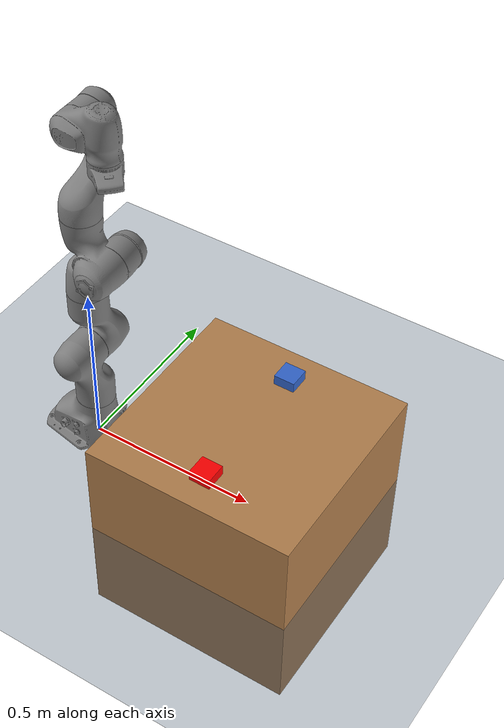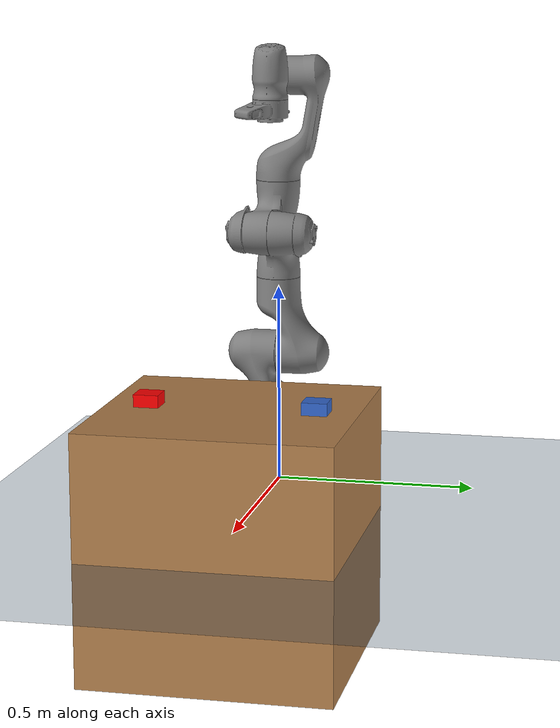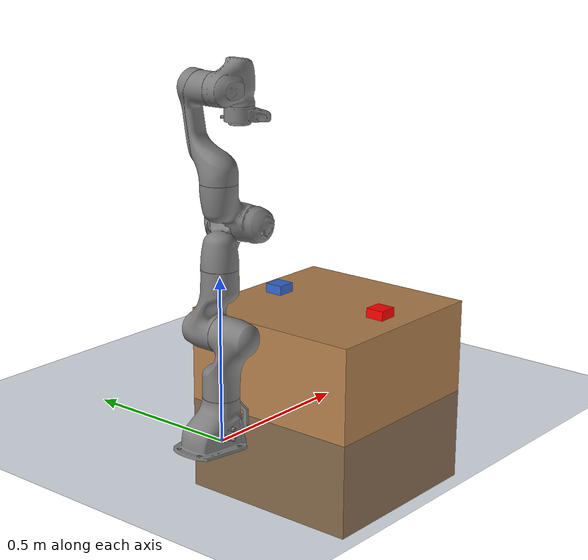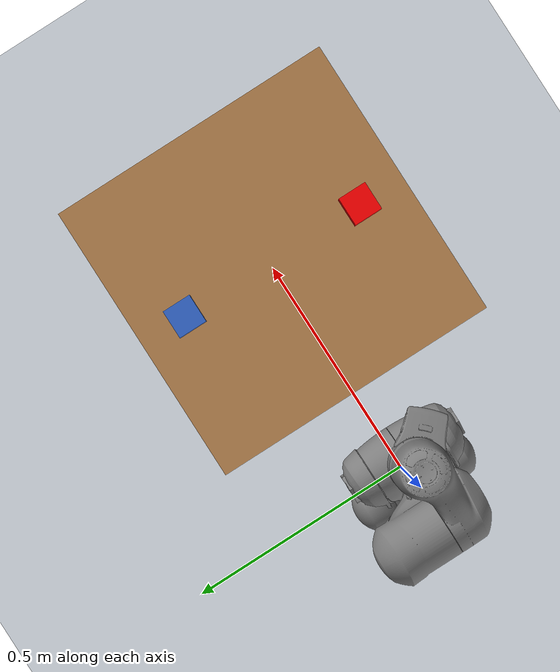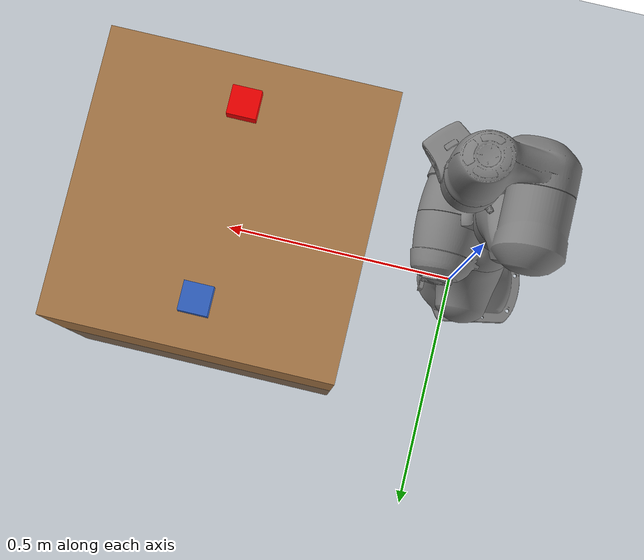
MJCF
<mujoco model="panda scene">
  <include file="panda.xml"/>

  <statistic center="0.3 0 0.4" extent="1"/>

  <visual>
    <headlight diffuse="0.6 0.6 0.6" ambient="0.3 0.3 0.3" specular="0 0 0"/>
    <rgba haze="0.15 0.25 0.35 1"/>
    <global azimuth="120" elevation="-20"/>
  </visual>

  <asset>
    <texture type="skybox" builtin="gradient" rgb1="0.3 0.5 0.7" rgb2="0 0 0" width="512" height="3072"/>
    <texture type="2d" name="groundplane" builtin="checker" mark="edge"
             rgb1="0.2 0.3 0.4" rgb2="0.1 0.2 0.3"
             markrgb="0.8 0.8 0.8" width="300" height="300"/>
    <material name="groundplane" texture="groundplane"
              texuniform="true" texrepeat="5 5" reflectance="0.2"/>
  </asset>

  <worldbody>
    <!-- LIGHT -->
    <light pos="0 0 1.5" dir="0 0 -1" directional="true"/>

    <!-- FLOOR -->
    <geom name="floor" size="0 0 0.05" type="plane" material="groundplane"/>

      <!-- STATIC CAMERA -->
    <camera name="static_cam"
      pos="-0.2 -0.45 1.5"
      euler="0.4 -0.5236 -0.8727"
      fovy="45"/>

    <!-- STATIC DESK -->
    <body name="desk" pos="0.5 0 0">
        <geom name="desk_geom"
              type="box"
              size="0.3 0.3 0.3"
              rgba="0.7 0.5 0.3 1"
              contype="1"
              conaffinity="1"/>
    </body>

    <!-- MOVABLE BLOCK -->
  <body name="block1" pos="0.5 0.2 0.3">
      <freejoint/>
      <geom name="block_geom1"
            type="box"
            size="0.03 0.03 0.03"
            rgba="0.2 0.4 0.8 1"
            density="500"/>
  </body>

  <body name="block2" pos="0.5 -0.2 0.3">
      <freejoint/>
      <geom name="block_geom2"
            type="box"
            size="0.03 0.03 0.03"
            rgba="1 0 0 1"
            density="500"/>
  </body>

  </worldbody>
</mujoco>

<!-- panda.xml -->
<mujoco model="panda">
  <compiler angle="radian"/>

  <asset>
    <mesh name="link0" file="models/panda_description/meshes/visual/link0.stl"/>
    <mesh name="link1" file="models/panda_description/meshes/visual/link1.stl"/>
    <mesh name="link2" file="models/panda_description/meshes/visual/link2.stl"/>
    <mesh name="link3" file="models/panda_description/meshes/visual/link3.stl"/>
    <mesh name="link4" file="models/panda_description/meshes/visual/link4.stl"/>
    <mesh name="link5" file="models/panda_description/meshes/visual/link5.stl"/>
    <mesh name="link6" file="models/panda_description/meshes/visual/link6.stl"/>
    <mesh name="link7" file="models/panda_description/meshes/visual/link7.stl"/>
  </asset>

  <worldbody>
    <geom type="mesh" mesh="link0"/>
    <body name="panda_link1" pos="0 0 0.333">
      <inertial pos="0 0 0" mass="2.34" diaginertia="0.3 0.3 0.3"/>
      <joint name="panda_joint1" pos="0 0 0" axis="0 0 1" range="-3.14 3.14" actuatorfrcrange="-87 87"/>
      <geom type="mesh" mesh="link1"/>
      <body name="panda_link2" quat="0.707107 -0.707107 0 0">
        <inertial pos="0 0 0" mass="2.36" diaginertia="0.3 0.3 0.3"/>
        <joint name="panda_joint2" pos="0 0 0" axis="0 0 1" range="-2.1 2.1" actuatorfrcrange="-87 87"/>
        <geom type="mesh" mesh="link2"/>
        <body name="panda_link3" pos="0 -0.316 0" quat="0.707107 0.707107 0 0">
          <inertial pos="0 0 0" mass="2.38" diaginertia="0.3 0.3 0.3"/>
          <joint name="panda_joint3" pos="0 0 0" axis="0 0 1" range="-3.14 3.14" actuatorfrcrange="-87 87"/>
          <geom type="mesh" mesh="link3"/>
          <body name="panda_link4" pos="0.0825 0 0" quat="0.707107 0.707107 0 0">
            <inertial pos="0 0 0" mass="2.43" diaginertia="0.3 0.3 0.3"/>
            <joint name="panda_joint4" pos="0 0 0" axis="0 0 1" range="-3.14 0.25" actuatorfrcrange="-87 87"/>
            <geom type="mesh" mesh="link4"/>
            <body name="panda_link5" pos="-0.0825 0.384 0" quat="0.707107 -0.707107 0 0">
              <inertial pos="0 0 0" mass="3.5" diaginertia="0.3 0.3 0.3"/>
              <joint name="panda_joint5" pos="0 0 0" axis="0 0 1" range="-3.14 3.14" actuatorfrcrange="-12 12"/>
              <geom type="mesh" mesh="link5"/>
              <body name="panda_link6" pos="0 0 0" quat="0.707107 0.707107 0 0">
                <inertial pos="0 0 0" mass="1.47" diaginertia="0.3 0.3 0.3"/>
                <joint name="panda_joint6" pos="0 0 0" axis="0 0 1" range="0 4.0" actuatorfrcrange="-12 12"/>
                <geom type="mesh" mesh="link6" quat="1 0 0 0"/>
                <body name="panda_link7" pos="0.088 0 0" quat="0.707107 0.707107 0 0">
                  <inertial pos="0 0 0" mass="0.45" diaginertia="0.3 0.3 0.3"/>
                  <joint name="panda_joint7" pos="0 0 0" axis="0 0 1" range="-3.14 3.14" actuatorfrcrange="-12 12"/>
                  <geom type="mesh" mesh="link7"/>
                </body>
              </body>
            </body>
          </body>
        </body>
      </body>
    </body>
  </worldbody>
</mujoco>
